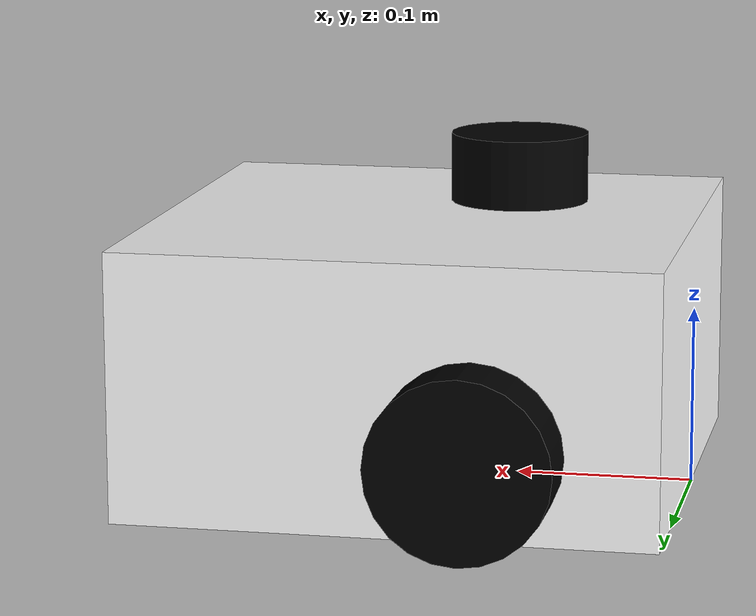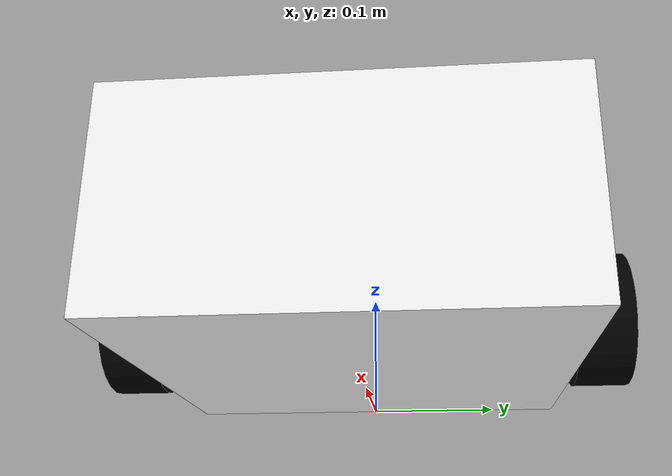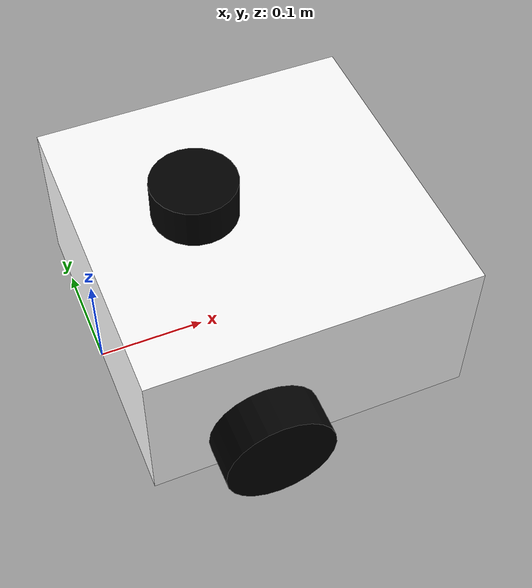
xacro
<?xml version="1.0"?>

<robot name="my_bot" xmlns:xacro="http://www.ros.org/wiki/xacro"> <!-- Starts the master blueprint, names the entire completed robot "my_bot", and turns on the Xacro toolkit so we can use include commands.-->

    <xacro:include filename="robot_core.xacro"/>
    <xacro:include filename="lidar.xacro"/>

</robot>

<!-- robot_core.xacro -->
<!--every xacro file starts with this; it just tells the computer "this is an XML file." -->

<robot xmlns:xacro="http://www.ros.org/wiki/xacro">      <!-- this is the outer wrapper every URDF/xacro file needs. xmlns:xacro is just enabling the special xacro: features (like macros) inside this file. -->
    <xacro:include filename="inertial_macros.xacro"/>

    <material name="white">
        <color rgba="1 1 1 1"/>
    </material>

    <material name="orange">
        <color rgba="1 0.3 0.1 1"/>
    </material>

    <material name="black">
        <color rgba="0 0 0 1"/>
    </material>

    <!-- BASE LINK -->
    <!-- an empty link -->
    <link name="base_link">     <!-- base_link is a convention: a reference-point origin for your whole robot (like the (0,0,0) of a graph). -->
    </link>

    <!-- CHASSIS LINK -->
    <!-- connecting base_link to the actual body -->
    <joint name="chassis_joint" type="fixed"> <!-- here, fixed means these two parts never move relative to each other (as opposed to a wheel joint, which would rotate).-->
        <parent link="base_link"/>
        <child link="chassis"/>
        <origin xyz="0 0 0"/> <!-- means "the chassis sits exactly at base_link's position, no offset." -->
    </joint>

    <!-- the actual visible box -->
    <link name="chassis">
        <visual> <!-- visual is the part you see in RViz, Gazebo, etc. -->
            <origin xyz="0.15 0 0.075"/>
            <geometry>
                <box size="0.3 0.3 0.15"/>
            </geometry>
            <material name="white"/>
        </visual>
        <collision> <!-- collision is the part used for physics simulation and obstacle avoidance -->
            <origin xyz="0.15 0 0.075"/>
            <geometry>
                <box size="0.3 0.3 0.15"/>
            </geometry>
        </collision>
        <xacro:box_inertia mass="0.5" x="0.3" y="0.3" z="0.15"/>
    </link>

    <!-- GAZEBO MATERIAL + PHYSICS FOR CHASSIS -->
    <gazebo reference="chassis">
        <material>Gazebo/White</material>
        <mu1>0.2</mu1>
        <mu2>0.2</mu2> <!-- mu2 is the Coefficient of Friction in the secondary direction (left/right). Setting both to 0.2 means the chassis has the same moderate "grippiness" from all sides.-->
    </gazebo>

    <!-- WHEEL LINKS AND JOINTS -->
<xacro:macro name="wheel" params="prefix x_reflect y_reflect">
    <joint name="${prefix}_wheel_joint" type="continuous">
        <parent link="chassis"/>
        <child link="${prefix}_wheel"/>
        <origin xyz="0.1 ${y_reflect * 0.175} 0.05" rpy="${-pi/2} 0 0"/>
        <axis xyz="0 0 1"/>
    </joint>

    <link name="${prefix}_wheel">
        <visual>
            <geometry>x
                <cylinder radius="0.05" length="0.04"/>
            </geometry>
            <material name="black"/>
        </visual>
        <collision>
            <geometry>
                <cylinder radius="0.05" length="0.04"/>
            </geometry>
        </collision>
        <xacro:cylinder_inertia mass="0.1" length="0.04" radius="0.05"/>
    </link>

    <gazebo reference="${prefix}_wheel">
        <material>Gazebo/Black</material>
        <mu1>1.0</mu1>
        <mu2>1.0</mu2>
    </gazebo>
</xacro:macro>

<xacro:wheel prefix="left" x_reflect="1" y_reflect="1"/>
<xacro:wheel prefix="right" x_reflect="1" y_reflect="-1"/>

    <gazebo>
<plugin filename="gz-sim-diff-drive-system" name="gz::sim::systems::DiffDrive">
    <left_joint>left_wheel_joint</left_joint>
    <right_joint>right_wheel_joint</right_joint>
    <wheel_separation>0.3</wheel_separation>
    <wheel_radius>0.05</wheel_radius>
    <odom_publish_frequency>10</odom_publish_frequency>
    <topic>cmd_vel</topic>
    <odom_topic>odom</odom_topic>
    <frame_id>odom</frame_id>
    <child_frame_id>base_link</child_frame_id>
    <tf_topic>tf</tf_topic>
</plugin>
</gazebo>

</robot>

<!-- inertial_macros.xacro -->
<robot xmlns:xacro="http://www.ros.org/wiki/xacro">

    <xacro:macro name="box_inertia" params="mass x y z"> <!-- Defines a custom, reusable function named "box_inertia" that requires 4 inputs: mass, length (x), width (y), and height (z). -->
        <inertial>
            <mass value="${mass}"/> <!--Sets the weight of the part. The ${...} tells Xacro to inject the "mass" number we passed into the macro.-->
            <inertia ixx="${(1/12) * mass * (y*y+z*z)}" ixy="0.0" ixz="0.0"
                      iyy="${(1/12) * mass * (x*x+z*z)}" iyz="0.0"
                      izz="${(1/12) * mass * (x*x+y*y)}"/>
                    <!-- ixx , Calculates the resistance to rolling on the X-axis using standard physics math. The cross-products (ixy, ixz) are zero because we assume the weight is perfectly balanced.-->
                    <!-- iyy, Calculates the resistance to pitching on the Y-axis.-->
                    <!-- izz, Calculates the resistance to yawing (spinning) on the Z-axis.-->
        </inertial>
    </xacro:macro>

    <xacro:macro name="cylinder_inertia" params="mass length radius"> <!-- Defines a reusable function for cylindrical parts, requiring 3 inputs: mass, length (height), and radius (thickness). -->
        <inertial>
            <mass value="${mass}"/> <!-- Injects the provided mass value. -->
            <inertia ixx="${(1/12) * mass * (3*radius*radius + length*length)}" ixy="0.0" ixz="0.0"
                      iyy="${(1/12) * mass * (3*radius*radius + length*length)}" iyz="0.0"
                      izz="${(1/2) * mass * (radius*radius)}"/>
                    <!-- ixx, Calculates the X-axis rotational inertia for a cylinder standing upright.-->
                    <!-- iyy, Calculates the Y-axis rotational inertia (identical to the X-axis because a cylinder is symmetrical from the side).-->
                    <!-- izz, Calculates the Z-axis rotational inertia (spinning the cylinder like a top).-->
        </inertial> <!-- Closes the physics block.-->
    </xacro:macro> <!-- Ends the cylinder macro.-->

    <xacro:macro name="sphere_inertia" params="mass radius"> <!-- Defines a reusable function for spherical parts, requiring only 2 inputs: mass and radius. -->
        <inertial>
            <mass value="${mass}"/>
            <inertia ixx="${(2/5) * mass * (radius*radius)}" ixy="0.0" ixz="0.0"
                      iyy="${(2/5) * mass * (radius*radius)}" iyz="0.0"
                      izz="${(2/5) * mass * (radius*radius)}"/>
                    <!-- ixx, Calculates X-axis rotational inertia for a solid ball.-->
                    <!-- iyy, Calculates Y-axis rotational inertia for a solid ball.-->
                    <!-- izz, Calculates Z-axis rotational inertia for a solid ball.-->
        </inertial>
    </xacro:macro>

</robot>

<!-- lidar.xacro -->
<robot xmlns:xacro="http://www.ros.org/wiki/xacro">

    <!-- LIDAR JOINT (how those parts connect) -->
    <joint name="laser_joint" type="fixed"> <!-- This tells the simulator that the LiDAR is rigidly attached to the robot.-->
        <parent link="chassis"/> <!-- this establishes chassis as base part -->
        <child link="laser_frame"/> <!-- This establishes the LiDAR as the part being attached to the chassis. -->
        <origin xyz="0.1 0 0.1785" rpy="0 0 0"/> <!-- This dictates exactly where to glue the LiDAR relative to the center of the chassis ; rpy is Roll, Pitch, and Yaw -->
    </joint>

    <!-- LIDAR LINK (the physical parts) -->
    <link name="laser_frame">
        <visual>
            <geometry>
                <cylinder radius="0.0385" length="0.0385"/>
            </geometry>
            <material name="black"/>
        </visual>

        <collision> <!-- this creates an invisible "hitbox" for the physics simulator (like Gazebo). -->
            <geometry>
                <cylinder radius="0.0385" length="0.0385"/>
            </geometry>
        </collision>
        <xacro:cylinder_inertia mass="0.125" length="0.0385" radius="0.0385"/>
    </link>

    <!-- GAZEBO LIDAR SENSOR -->
    <gazebo reference="laser_frame"> <!-- Tells Gazebo (the simulator) to apply all these special sensor settings to the physical "laser_frame" link we built earlier. -->
        <sensor name="lidar" type="gpu_lidar">
            <pose>0 0 0 0 0 0</pose> <!-- Position and rotation offset. It is all zeros because we already placed it perfectly in the URDF joint. -->
            <topic>scan</topic> <!-- Sets the ROS "radio station" (topic) where the sensor will broadcast its laser data so other nodes can listen to it. -->
            <update_rate>10</update_rate> <!-- Tells the sensor to spin and take a full reading 10 times per second (10 Hz).. -->
            <always_on>true</always_on> <!-- Keeps the sensor always on. -->
            <visualize>true</visualize> <!-- Makes the sensor visible in the simulator. -->

            <lidar> <!-- This section is where we set the LiDAR's scanning parameters. -->
                <scan> <!-- Opens the settings for how the laser sweeps horizontally across the room. -->
                    <horizontal>
                        <samples>360</samples> <!-- Shoots out 360 individual laser beams per spin (one beam for every degree). -->
                        <min_angle>-3.14159</min_angle> <!-- Starts the sweep at -180 degrees (written in radians, which is negative Pi). -->
                        <max_angle>3.14159</max_angle> <!-- Ends the sweep at +180 degrees (written in radians, which is positive Pi). -->
                    </horizontal>
                </scan>
                <range> <!-- Opens the settings for how far the laser can see. -->
                    <min>0.05</min> <!-- The laser will ignore anything closer than 0.05 meters (5 centimeters) -->
                    <max>12.0</max> <!-- The laser will ignore anything further than 12 meters away. -->
                </range>
            </lidar>
        </sensor>
    </gazebo>

</robot>
